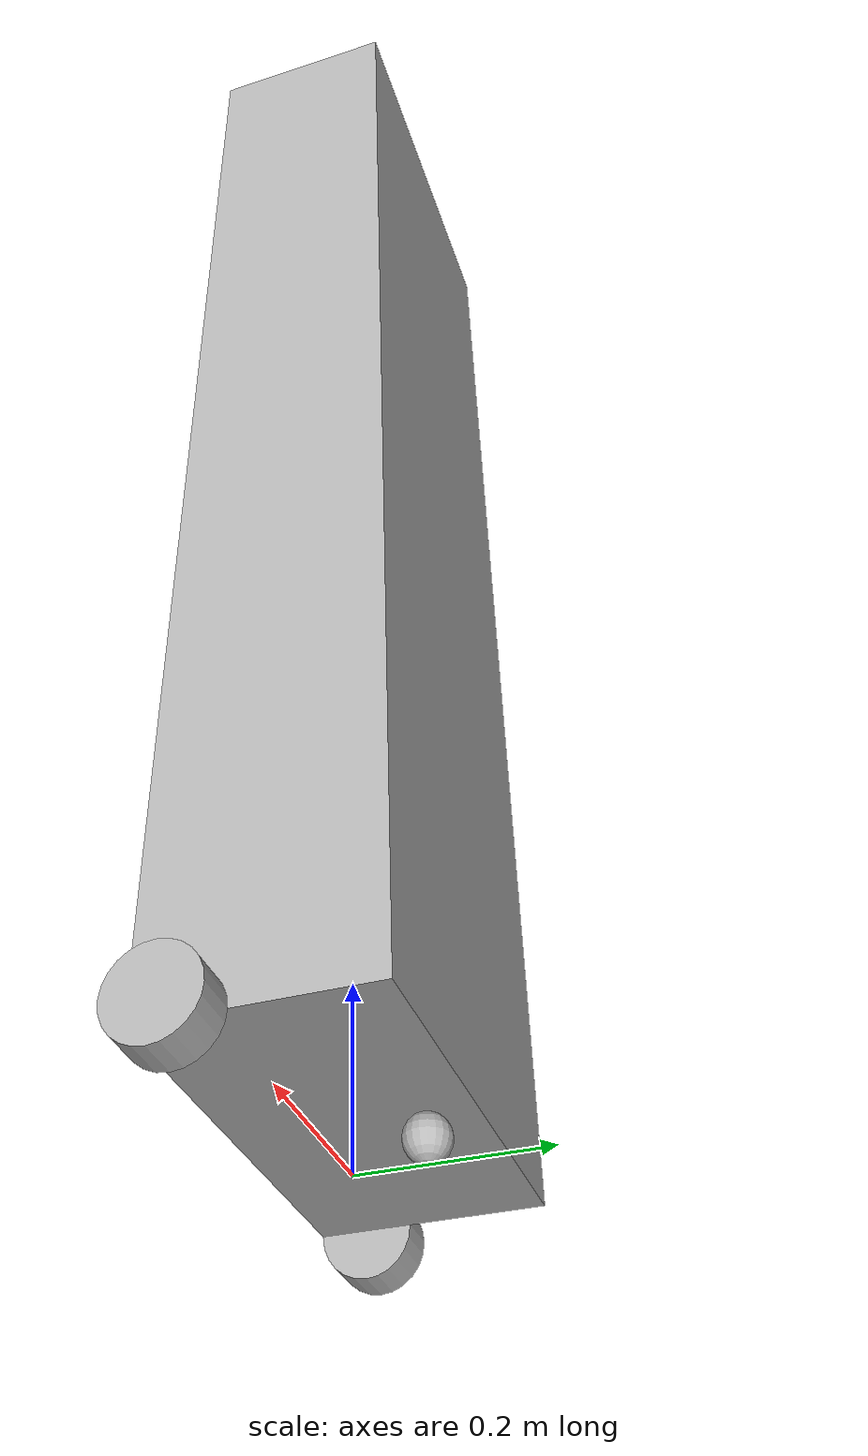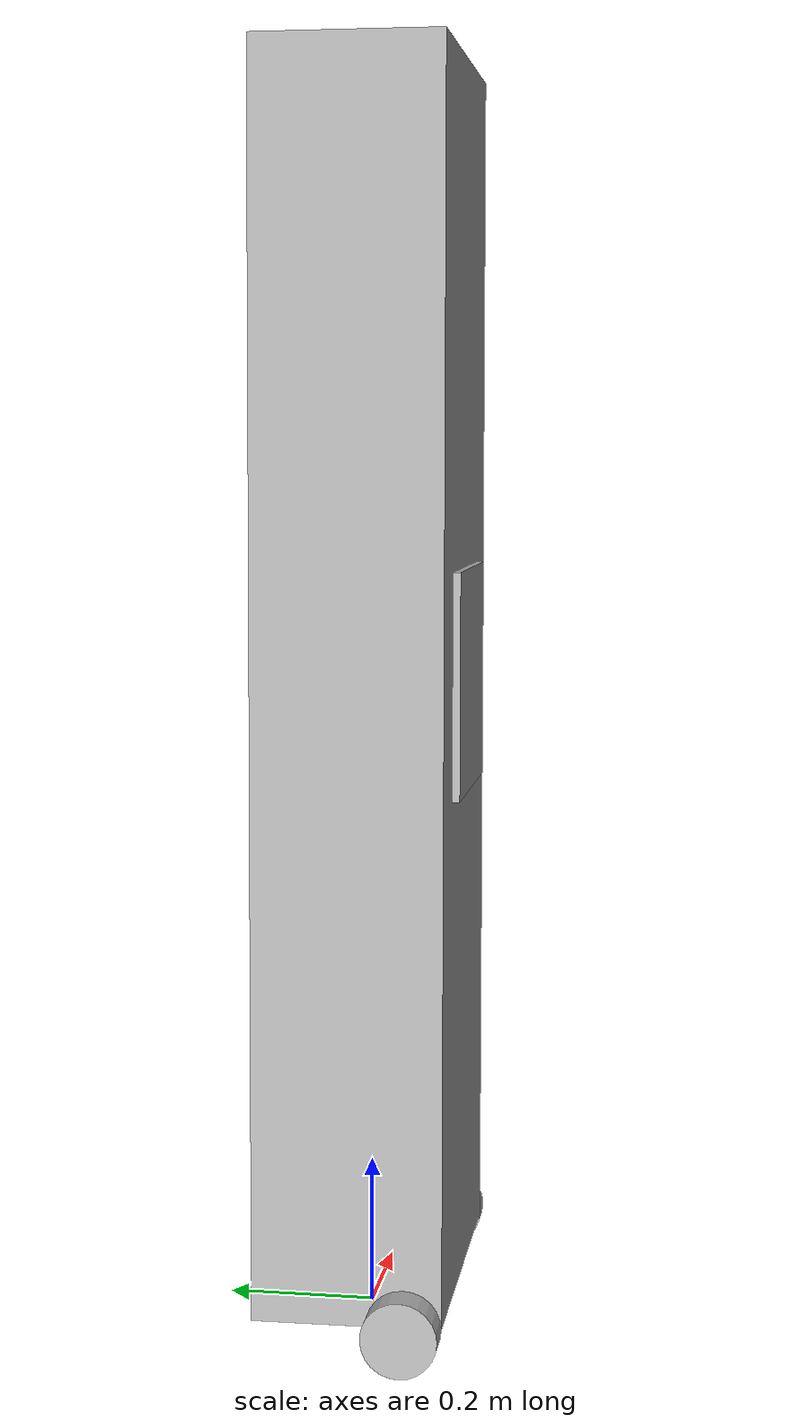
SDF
<?xml version='1.0'?>
<sdf version='1.4'>
	<model name="Fake_Shopper">
		<static>false</static>

		<!--********  APRIL TAG ********-->
		<link name="april_tag">
			<pose>0 -0.130 0.875 0 0 0</pose>
			<gravity>1</gravity>
			<inertial>
				<mass>1</mass>
				<pose>0 0.130 -0.825 0 0 0</pose>
				<inertia>
					<ixx>0.5</ixx>
					<iyy>1.0</iyy>
					<izz>0.1</izz>
				</inertia>
			</inertial>
			<visual name='april_tag_visual'>
				<geometry>
					<box>
						<size>0.3 0.01 0.3 </size>
					</box>
				</geometry>
				<material>
					<script>
						<uri>model://Fake_Shopper/scripts/</uri>
						<uri>model:://Fake_Shopper/textures</uri>
						<name>AprilTag/Diffuse</name>
					</script>
					<lighting>0</lighting>
				</material>
			</visual>

			<collision name='april_tag_collision'>
				<geometry>
					<box>
						<size>0.3 0.01 0.3 </size>
					</box>
				</geometry>
                                <material>
					<script>
						<uri>model://Fake_Shopper/scripts/</uri>
						<uri>model:://Fake_Shopper/textures</uri>
						<name>AprilTag/Diffuse</name>
					</script>
					<lighting>0</lighting>
				</material>
			</collision>
		</link>

		<!--********  BODY ********-->
		<link name='body'>
			<pose>0 0 0.875 0 0 0</pose>
			<inertial>
				<mass>80</mass>
				<pose>0 0 -0.825 0 0 0</pose>
				<inertia>
					<ixx>0.5</ixx>
					<iyy>1.0</iyy>
					<izz>0.1</izz>
				</inertia>
			</inertial>
			<collision name='body_collision'>
				<geometry>
					<box>
						<size>0.5 0.25 1.65</size>
					</box>
				</geometry>
			</collision>

			<visual name='body_visual'>
				<geometry>
					<box>
						<size>0.5 0.25 1.65</size>
					</box>
				</geometry>
			</visual>

			<!--********  CASTER WHEEL ********-->
			<collision name='caster_collision'>
				<pose>0 0.075 -0.85 0 0 0</pose>
				<geometry>
					<sphere>
						<radius>0.025</radius>
					</sphere>
				</geometry>

				<surface>
					<friction>
						<ode>
							<mu>0</mu>
							<mu2>0</mu2>
							<slip1>1.0</slip1>
							<slip2>1.0</slip2>
						</ode>
					</friction>
				</surface>
			</collision>

			<visual name='caster_visual'>
				<pose>0 0.075 -0.85 0 0 0</pose>
				<geometry>
					<sphere>
						<radius>0.025</radius>
					</sphere>
				</geometry>
			</visual>
		</link>

		<!--********  LEFT WHEEL ********-->
		<link name="left_wheel">
			<pose>-0.275 -0.075 0.05 0 1.5707 6.283</pose>
			<inertial>
				<mass>1</mass>
				<pose>0 0 0.05 0 0 0</pose>
				<inertia>
					<ixx>0.5</ixx>
					<iyy>1.0</iyy>
					<izz>0.1</izz>
				</inertia>
			</inertial>
			<collision name="left_wheel_collision">
				<geometry>
					<cylinder>
						<radius>0.05</radius>
						<length>0.05</length>
					</cylinder>
				</geometry>
			</collision>
			<visual name="left_wheel_visual">
				<geometry>
					<cylinder>
						<radius>0.05</radius>
						<length>0.05</length>
					</cylinder>
				</geometry>
			</visual>
		</link>

		<!--********  RIGHT WHEEL ********-->
		<link name="right_wheel">
			<pose>0.275 -0.075 0.05 0 1.5707 6.283</pose>
			<inertial>
				<mass>1</mass>
				<pose>0 0 0.05 0 0 0</pose>
				<inertia>
					<ixx>0.5</ixx>
					<iyy>1.0</iyy>
					<izz>0.1</izz>
				</inertia>
			</inertial>
			<collision name="right_wheel_collision">
				<geometry>
					<cylinder>
						<radius>0.05</radius>
						<length>0.05</length>
					</cylinder>
				</geometry>
			</collision>
			<visual name="right_wheel_visual">
				<geometry>
					<cylinder>
						<radius>0.05</radius>
						<length>0.05</length>
					</cylinder>
				</geometry>
			</visual>
		</link>

		<!--********  LEFT WHEEL JOINT ********-->
		<joint type="revolute" name="left_wheel_hinge">
			<pose>0 0 -0.03 0 0 0</pose>
			<child>left_wheel</child>
			<parent>body</parent>
			<axis>
				<xyz>-1 0 0</xyz>
			</axis>
		</joint>

		<!--********  RIGHT WHEEL JOINT ********-->
		<joint type="revolute" name="right_wheel_hinge">
			<pose>0 0 0.03 0 0 0</pose>
			<child>right_wheel</child>
			<parent>body</parent>
			<axis>
				<xyz>-1 0 0</xyz>
			</axis>
		</joint>

		<!--********  APRIL TAG JOINT ********-->
		<joint name='april_tag_joint' type='fixed'>
			<parent>body</parent>
			<child>april_tag</child>
			<pose frame=''>0 0 0 0 -0 0</pose>
			<physics>
				<ode>
					<limit>
						<cfm>0</cfm>
						<erp>0.2</erp>
					</limit>
					<suspension>
						<cfm>0</cfm>
						<erp>0.2</erp>
					</suspension>
				</ode>
			</physics>
		</joint>

		<!--********  DIFFERENTIAL DRIVE PLUGIN ********-->
		<plugin name="differential_drive_controller" filename="libgazebo_ros_diff_drive.so">
			<alwaysOn>true</alwaysOn>
			<updateRate>60</updateRate>
			<leftJoint>left_wheel_hinge</leftJoint>
			<rightJoint>right_wheel_hinge</rightJoint>
			<wheelSeparation>0.5</wheelSeparation>
			<wheelDiameter>0.05</wheelDiameter>
			<torque>2</torque>
			<commandTopic>cmd_vel</commandTopic>
			<odometryTopic>odom</odometryTopic>
			<odometryFrame>odom</odometryFrame>
			<robotBaseFrame>body</robotBaseFrame>
			<legacyMode>false</legacyMode>
			<robotNamespace>shopper</robotNamespace>
		</plugin>
	</model>
</sdf>
